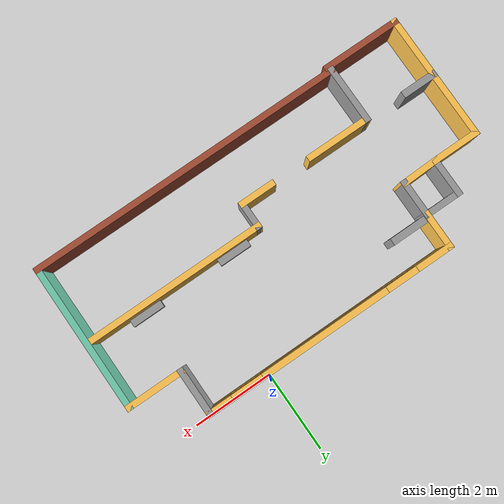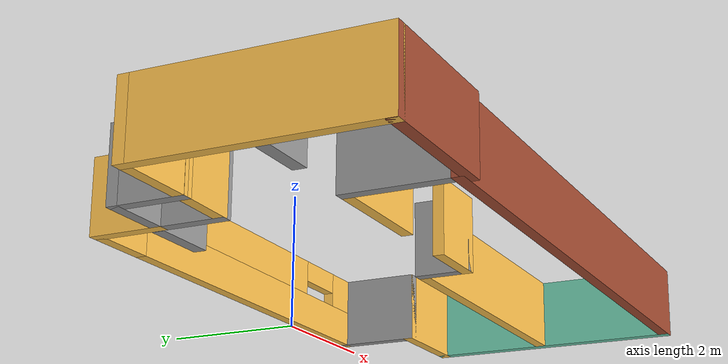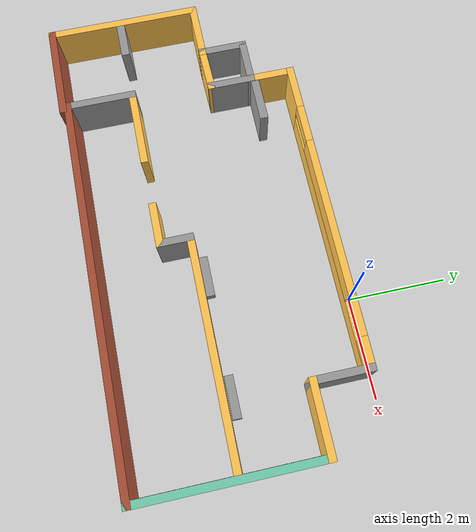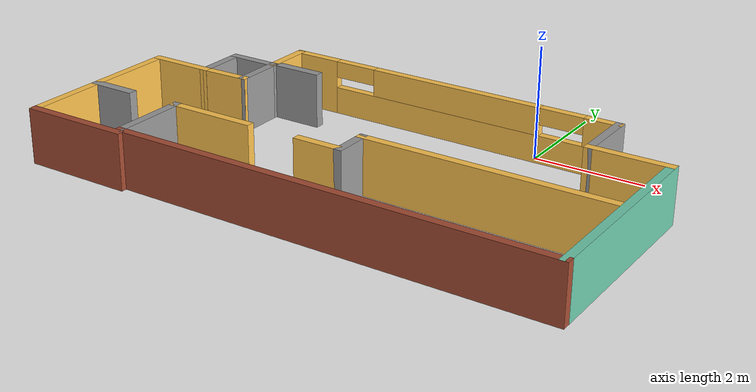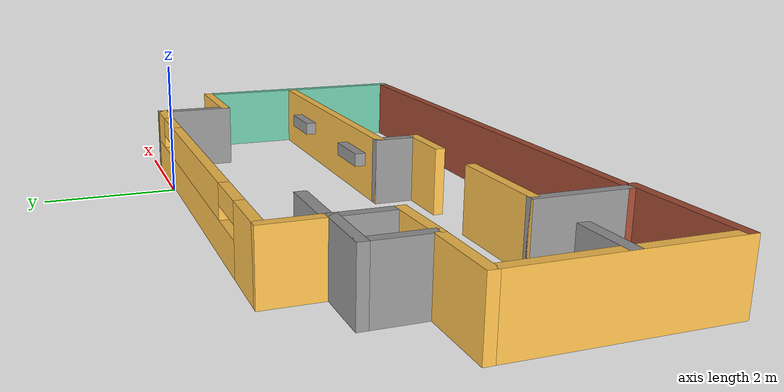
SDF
<?xml version='1.0'?>
<sdf version='1.6'>
  <model name='mybuilding'>
    <pose frame=''>-1.975 -2.502 0 0 -0 0</pose>
    <link name='Door_0'>
      <collision name='Door_0_Collision'>
        <geometry>
          <box>
            <size>0.9 0.17 1</size>
          </box>
        </geometry>
        <pose frame=''>0 0 0.5 0 -0 0</pose>
      </collision>
      <visual name='Door_0_Visual'>
        <pose frame=''>0 0 0.5 0 -0 0</pose>
        <geometry>
          <box>
            <size>0.9 0.17 1</size>
          </box>
        </geometry>
        <material>
          <script>
            <uri>file://media/materials/scripts/gazebo.material</uri>
            <name>Gazebo/Grey</name>
          </script>
        </material>
      </visual>
      <pose frame=''>-4.44751 -0.930542 0 0 -0 0</pose>
    </link>
    <link name='Door_2'>
      <collision name='Door_2_Collision'>
        <geometry>
          <box>
            <size>0.9 0.17 1</size>
          </box>
        </geometry>
        <pose frame=''>0 0 0.5 0 -0 0</pose>
      </collision>
      <visual name='Door_2_Visual'>
        <pose frame=''>0 0 0.5 0 -0 0</pose>
        <geometry>
          <box>
            <size>0.9 0.17 1</size>
          </box>
        </geometry>
        <material>
          <script>
            <uri>file://media/materials/scripts/gazebo.material</uri>
            <name>Gazebo/Grey</name>
          </script>
        </material>
      </visual>
      <pose frame=''>-2.34263 1.61383 0 0 -0 0</pose>
    </link>
    <link name='Wall_0'>
      <pose frame=''>0.3 2.4 0 0 -0 0</pose>
      <visual name='Wall_0_Visual_0'>
        <pose frame=''>-2.77622 0 0.5 0 -0 0</pose>
        <geometry>
          <box>
            <size>0.947553 0.15 1</size>
          </box>
        </geometry>
        <material>
          <script>
            <uri>file://media/materials/scripts/gazebo.material</uri>
            <name>Gazebo/Grey</name>
          </script>
          <ambient>1 0.764706 0.305882 1</ambient>
        </material>
        <meta>
          <layer>0</layer>
        </meta>
      </visual>
      <collision name='Wall_0_Collision_0'>
        <geometry>
          <box>
            <size>0.947553 0.15 1</size>
          </box>
        </geometry>
        <pose frame=''>-2.77622 0 0.5 0 -0 0</pose>
      </collision>
      <visual name='Wall_0_Visual_1'>
        <pose frame=''>0.473776 0 0.25 0 -0 0</pose>
        <geometry>
          <box>
            <size>5.55245 0.15 0.5</size>
          </box>
        </geometry>
        <material>
          <script>
            <uri>file://media/materials/scripts/gazebo.material</uri>
            <name>Gazebo/Grey</name>
          </script>
          <ambient>1 0.764706 0.305882 1</ambient>
        </material>
        <meta>
          <layer>0</layer>
        </meta>
      </visual>
      <collision name='Wall_0_Collision_1'>
        <geometry>
          <box>
            <size>5.55245 0.15 0.5</size>
          </box>
        </geometry>
        <pose frame=''>0.473776 0 0.25 0 -0 0</pose>
      </collision>
      <visual name='Wall_0_Visual_2'>
        <pose frame=''>0.144611 0 0.75 0 -0 0</pose>
        <geometry>
          <box>
            <size>3.29412 0.15 0.5</size>
          </box>
        </geometry>
        <material>
          <script>
            <uri>file://media/materials/scripts/gazebo.material</uri>
            <name>Gazebo/Grey</name>
          </script>
          <ambient>1 0.764706 0.305882 1</ambient>
        </material>
        <meta>
          <layer>0</layer>
        </meta>
      </visual>
      <collision name='Wall_0_Collision_2'>
        <geometry>
          <box>
            <size>3.29412 0.15 0.5</size>
          </box>
        </geometry>
        <pose frame=''>0.144611 0 0.75 0 -0 0</pose>
      </collision>
      <visual name='Wall_0_Visual_3'>
        <pose frame=''>2.92083 0 0.75 0 -0 0</pose>
        <geometry>
          <box>
            <size>0.65833 0.15 0.5</size>
          </box>
        </geometry>
        <material>
          <script>
            <uri>file://media/materials/scripts/gazebo.material</uri>
            <name>Gazebo/Grey</name>
          </script>
          <ambient>1 0.764706 0.305882 1</ambient>
        </material>
        <meta>
          <layer>0</layer>
        </meta>
      </visual>
      <collision name='Wall_0_Collision_3'>
        <geometry>
          <box>
            <size>0.65833 0.15 0.5</size>
          </box>
        </geometry>
        <pose frame=''>2.92083 0 0.75 0 -0 0</pose>
      </collision>
      <visual name='Wall_0_Visual_4'>
        <pose frame=''>-1.90245 0 0.85 0 -0 0</pose>
        <geometry>
          <box>
            <size>0.8 0.15 0.3</size>
          </box>
        </geometry>
        <material>
          <script>
            <uri>file://media/materials/scripts/gazebo.material</uri>
            <name>Gazebo/Grey</name>
          </script>
          <ambient>1 0.764706 0.305882 1</ambient>
        </material>
        <meta>
          <layer>0</layer>
        </meta>
      </visual>
      <collision name='Wall_0_Collision_4'>
        <geometry>
          <box>
            <size>0.8 0.15 0.3</size>
          </box>
        </geometry>
        <pose frame=''>-1.90245 0 0.85 0 -0 0</pose>
      </collision>
      <visual name='Wall_0_Visual_5'>
        <pose frame=''>2.19167 0 0.85 0 -0 0</pose>
        <geometry>
          <box>
            <size>0.8 0.15 0.3</size>
          </box>
        </geometry>
        <material>
          <script>
            <uri>file://media/materials/scripts/gazebo.material</uri>
            <name>Gazebo/Grey</name>
          </script>
          <ambient>1 0.764706 0.305882 1</ambient>
        </material>
        <meta>
          <layer>0</layer>
        </meta>
      </visual>
      <collision name='Wall_0_Collision_5'>
        <geometry>
          <box>
            <size>0.8 0.15 0.3</size>
          </box>
        </geometry>
        <pose frame=''>2.19167 0 0.85 0 -0 0</pose>
      </collision>
    </link>
    <link name='Wall_1'>
      <collision name='Wall_1_Collision'>
        <geometry>
          <box>
            <size>1.25 0.15 1</size>
          </box>
        </geometry>
        <pose frame=''>0 0 0.5 0 -0 0</pose>
      </collision>
      <visual name='Wall_1_Visual'>
        <pose frame=''>0 0 0.5 0 -0 0</pose>
        <geometry>
          <box>
            <size>1.25 0.15 1</size>
          </box>
        </geometry>
        <material>
          <script>
            <uri>file://media/materials/scripts/gazebo.material</uri>
            <name>Gazebo/Grey</name>
          </script>
          <ambient>1 1 1 1</ambient>
        </material>
        <meta>
          <layer>0</layer>
        </meta>
      </visual>
      <pose frame=''>3.475 1.85 0 0 0 -1.5708</pose>
    </link>
    <link name='Wall_11'>
      <collision name='Wall_11_Collision'>
        <geometry>
          <box>
            <size>1 0.15 1</size>
          </box>
        </geometry>
        <pose frame=''>0 0 0.5 0 -0 0</pose>
      </collision>
      <visual name='Wall_11_Visual'>
        <pose frame=''>0 0 0.5 0 -0 0</pose>
        <geometry>
          <box>
            <size>1 0.15 1</size>
          </box>
        </geometry>
        <material>
          <script>
            <uri>file://media/materials/scripts/gazebo.material</uri>
            <name>Gazebo/Grey</name>
          </script>
          <ambient>1 0.764706 0.305882 1</ambient>
        </material>
        <meta>
          <layer>0</layer>
        </meta>
      </visual>
      <pose frame=''>-2.875 1.975 0 0 0 -1.5708</pose>
    </link>
    <link name='Wall_12'>
      <collision name='Wall_12_Collision'>
        <geometry>
          <box>
            <size>1 0.15 1</size>
          </box>
        </geometry>
        <pose frame=''>0 0 0.5 0 -0 0</pose>
      </collision>
      <visual name='Wall_12_Visual'>
        <pose frame=''>0 0 0.5 0 -0 0</pose>
        <geometry>
          <box>
            <size>1 0.15 1</size>
          </box>
        </geometry>
        <material>
          <script>
            <uri>file://media/materials/scripts/gazebo.material</uri>
            <name>Gazebo/Grey</name>
          </script>
          <ambient>1 1 1 1</ambient>
        </material>
        <meta>
          <layer>0</layer>
        </meta>
      </visual>
      <pose frame=''>-3.3 1.55 0 0 -0 3.14159</pose>
    </link>
    <link name='Wall_13'>
      <collision name='Wall_13_Collision'>
        <geometry>
          <box>
            <size>1.023 0.15 1</size>
          </box>
        </geometry>
        <pose frame=''>0 0 0.5 0 -0 0</pose>
      </collision>
      <visual name='Wall_13_Visual'>
        <pose frame=''>0 0 0.5 0 -0 0</pose>
        <geometry>
          <box>
            <size>1.023 0.15 1</size>
          </box>
        </geometry>
        <material>
          <script>
            <uri>file://media/materials/scripts/gazebo.material</uri>
            <name>Gazebo/Grey</name>
          </script>
          <ambient>1 1 1 1</ambient>
        </material>
        <meta>
          <layer>0</layer>
        </meta>
      </visual>
      <pose frame=''>-3.725 1.1135 0 0 0 -1.5708</pose>
    </link>
    <link name='Wall_14'>
      <collision name='Wall_14_Collision'>
        <geometry>
          <box>
            <size>1.25 0.15 1</size>
          </box>
        </geometry>
        <pose frame=''>0 0 0.5 0 -0 0</pose>
      </collision>
      <visual name='Wall_14_Visual'>
        <pose frame=''>0 0 0.5 0 -0 0</pose>
        <geometry>
          <box>
            <size>1.25 0.15 1</size>
          </box>
        </geometry>
        <material>
          <script>
            <uri>file://media/materials/scripts/gazebo.material</uri>
            <name>Gazebo/Grey</name>
          </script>
          <ambient>1 0.764706 0.305882 1</ambient>
        </material>
        <meta>
          <layer>0</layer>
        </meta>
      </visual>
      <pose frame=''>-4.275 0.677 0 0 -0 3.14159</pose>
    </link>
    <link name='Wall_15'>
      <collision name='Wall_15_Collision'>
        <geometry>
          <box>
            <size>3.227 0.15 1</size>
          </box>
        </geometry>
        <pose frame=''>0 0 0.5 0 -0 0</pose>
      </collision>
      <visual name='Wall_15_Visual'>
        <pose frame=''>0 0 0.5 0 -0 0</pose>
        <geometry>
          <box>
            <size>3.227 0.15 1</size>
          </box>
        </geometry>
        <material>
          <script>
            <uri>file://media/materials/scripts/gazebo.material</uri>
            <name>Gazebo/Grey</name>
          </script>
          <ambient>1 0.764706 0.305882 1</ambient>
        </material>
        <meta>
          <layer>0</layer>
        </meta>
      </visual>
      <pose frame=''>-4.825 -0.8615 0 0 0 -1.5708</pose>
    </link>
    <link name='Wall_16'>
      <collision name='Wall_16_Collision'>
        <geometry>
          <box>
            <size>2 0.15 1</size>
          </box>
        </geometry>
        <pose frame=''>0 0 0.5 0 -0 0</pose>
      </collision>
      <visual name='Wall_16_Visual'>
        <pose frame=''>0 0 0.5 0 -0 0</pose>
        <geometry>
          <box>
            <size>2 0.15 1</size>
          </box>
        </geometry>
        <material>
          <script>
            <uri>file://media/materials/scripts/gazebo.material</uri>
            <name>Gazebo/Bricks</name>
          </script>
          <ambient>1 0.764706 0.305882 1</ambient>
        </material>
        <meta>
          <layer>0</layer>
        </meta>
      </visual>
      <pose frame=''>-3.9 -2.4 0 0 -0 0</pose>
    </link>
    <link name='Wall_18'>
      <pose frame=''>-1.35 -0.95 0 0 -0 0</pose>
      <visual name='Wall_18_Visual_0'>
        <pose frame=''>-0.913961 0 0.5 0 -0 0</pose>
        <geometry>
          <box>
            <size>1.67208 0.15 1</size>
          </box>
        </geometry>
        <material>
          <script>
            <uri>file://media/materials/scripts/gazebo.material</uri>
            <name>Gazebo/Grey</name>
          </script>
          <ambient>1 0.764706 0.305882 1</ambient>
        </material>
        <meta>
          <layer>0</layer>
        </meta>
      </visual>
      <collision name='Wall_18_Collision_0'>
        <geometry>
          <box>
            <size>1.67208 0.15 1</size>
          </box>
        </geometry>
        <pose frame=''>-0.913961 0 0.5 0 -0 0</pose>
      </collision>
      <visual name='Wall_18_Visual_1'>
        <pose frame=''>1.28604 0 0.5 0 -0 0</pose>
        <geometry>
          <box>
            <size>0.927921 0.15 1</size>
          </box>
        </geometry>
        <material>
          <script>
            <uri>file://media/materials/scripts/gazebo.material</uri>
            <name>Gazebo/Grey</name>
          </script>
          <ambient>1 0.764706 0.305882 1</ambient>
        </material>
        <meta>
          <layer>0</layer>
        </meta>
      </visual>
      <collision name='Wall_18_Collision_1'>
        <geometry>
          <box>
            <size>0.927921 0.15 1</size>
          </box>
        </geometry>
        <pose frame=''>1.28604 0 0.5 0 -0 0</pose>
      </collision>
    </link>
    <link name='Wall_19'>
      <collision name='Wall_19_Collision'>
        <geometry>
          <box>
            <size>0.75 0.15 1</size>
          </box>
        </geometry>
        <pose frame=''>0 0 0.5 0 -0 0</pose>
      </collision>
      <visual name='Wall_19_Visual'>
        <pose frame=''>0 0 0.5 0 -0 0</pose>
        <geometry>
          <box>
            <size>0.75 0.15 1</size>
          </box>
        </geometry>
        <material>
          <script>
            <uri>file://media/materials/scripts/gazebo.material</uri>
            <name>Gazebo/Grey</name>
          </script>
          <ambient>1 1 1 1</ambient>
        </material>
        <meta>
          <layer>0</layer>
        </meta>
      </visual>
      <pose frame=''>0.325 -0.65 0 0 -0 1.5708</pose>
    </link>
    <link name='Wall_2'>
      <collision name='Wall_2_Collision'>
        <geometry>
          <box>
            <size>1.5 0.15 1</size>
          </box>
        </geometry>
        <pose frame=''>0 0 0.5 0 -0 0</pose>
      </collision>
      <visual name='Wall_2_Visual'>
        <pose frame=''>0 0 0.5 0 -0 0</pose>
        <geometry>
          <box>
            <size>1.5 0.15 1</size>
          </box>
        </geometry>
        <material>
          <script>
            <uri>file://media/materials/scripts/gazebo.material</uri>
            <name>Gazebo/Grey</name>
          </script>
          <ambient>1 0.764706 0.305882 1</ambient>
        </material>
        <meta>
          <layer>0</layer>
        </meta>
      </visual>
      <pose frame=''>4.15 1.3 0 0 -0 0</pose>
    </link>
    <link name='Wall_20'>
      <collision name='Wall_20_Collision'>
        <geometry>
          <box>
            <size>4.5 0.15 1</size>
          </box>
        </geometry>
        <pose frame=''>0 0 0.5 0 -0 0</pose>
      </collision>
      <visual name='Wall_20_Visual'>
        <pose frame=''>0 0 0.5 0 -0 0</pose>
        <geometry>
          <box>
            <size>4.5 0.15 1</size>
          </box>
        </geometry>
        <material>
          <script>
            <uri>file://media/materials/scripts/gazebo.material</uri>
            <name>Gazebo/Grey</name>
          </script>
          <ambient>1 0.764706 0.305882 1</ambient>
        </material>
        <meta>
          <layer>0</layer>
        </meta>
      </visual>
      <pose frame=''>2.5 -0.35 0 0 -0 0</pose>
    </link>
    <link name='Wall_22'>
      <collision name='Wall_22_Collision'>
        <geometry>
          <box>
            <size>1 0.15 1</size>
          </box>
        </geometry>
        <pose frame=''>0 0 0.5 0 -0 0</pose>
      </collision>
      <visual name='Wall_22_Visual'>
        <pose frame=''>0 0 0.5 0 -0 0</pose>
        <geometry>
          <box>
            <size>1 0.15 1</size>
          </box>
        </geometry>
        <material>
          <script>
            <uri>file://media/materials/scripts/gazebo.material</uri>
            <name>Gazebo/Grey</name>
          </script>
          <ambient>1 0.764706 0.305882 1</ambient>
        </material>
        <meta>
          <layer>0</layer>
        </meta>
      </visual>
      <pose frame=''>-3.3 0.6885 0 0 -0 0.027052</pose>
    </link>
    <link name='Wall_23'>
      <collision name='Wall_23_Collision'>
        <geometry>
          <box>
            <size>1 0.15 1</size>
          </box>
        </geometry>
        <pose frame=''>0 0 0.5 0 -0 0</pose>
      </collision>
      <visual name='Wall_23_Visual'>
        <pose frame=''>0 0 0.5 0 -0 0</pose>
        <geometry>
          <box>
            <size>1 0.15 1</size>
          </box>
        </geometry>
        <material>
          <script>
            <uri>file://media/materials/scripts/gazebo.material</uri>
            <name>Gazebo/Grey</name>
          </script>
          <ambient>1 1 1 1</ambient>
        </material>
        <meta>
          <layer>0</layer>
        </meta>
      </visual>
      <pose frame=''>-2.875 1.125 0 0 -0 1.5708</pose>
    </link>
    <link name='Wall_3'>
      <collision name='Wall_3_Collision'>
        <geometry>
          <box>
            <size>3.75 0.15 1</size>
          </box>
        </geometry>
        <pose frame=''>0 0 0.5 0 -0 0</pose>
      </collision>
      <visual name='Wall_3_Visual'>
        <pose frame=''>0 0 0.5 0 -0 0</pose>
        <geometry>
          <box>
            <size>3.75 0.15 1</size>
          </box>
        </geometry>
        <material>
          <script>
            <uri>file://media/materials/scripts/gazebo.material</uri>
            <name>Gazebo/Grey</name>
          </script>
          <ambient>0.435294 0.796078 0.67451 1</ambient>
        </material>
        <meta>
          <layer>0</layer>
        </meta>
      </visual>
      <pose frame=''>4.825 -0.5 0 0 0 -1.5708</pose>
    </link>
    <link name='Wall_4'>
      <collision name='Wall_4_Collision'>
        <geometry>
          <box>
            <size>8 0.15 1</size>
          </box>
        </geometry>
        <pose frame=''>0 0 0.5 0 -0 0</pose>
      </collision>
      <visual name='Wall_4_Visual'>
        <pose frame=''>0 0 0.5 0 -0 0</pose>
        <geometry>
          <box>
            <size>8 0.15 1</size>
          </box>
        </geometry>
        <material>
          <script>
            <uri>file://media/materials/scripts/gazebo.material</uri>
            <name>Gazebo/Bricks</name>
          </script>
          <ambient>1 0.764706 0.305882 1</ambient>
        </material>
        <meta>
          <layer>0</layer>
        </meta>
      </visual>
      <pose frame=''>0.9 -2.3 0 0 -0 3.14159</pose>
    </link>
    <link name='Wall_5'>
      <collision name='Wall_5_Collision'>
        <geometry>
          <box>
            <size>1.5 0.15 1</size>
          </box>
        </geometry>
        <pose frame=''>0 0 0.5 0 -0 0</pose>
      </collision>
      <visual name='Wall_5_Visual'>
        <pose frame=''>0 0 0.5 0 -0 0</pose>
        <geometry>
          <box>
            <size>1.5 0.15 1</size>
          </box>
        </geometry>
        <material>
          <script>
            <uri>file://media/materials/scripts/gazebo.material</uri>
            <name>Gazebo/Grey</name>
          </script>
          <ambient>1 1 1 1</ambient>
        </material>
        <meta>
          <layer>0</layer>
        </meta>
      </visual>
      <pose frame=''>-3.025 -1.625 0 0 -0 1.5708</pose>
    </link>
    <link name='Window_0'>
      <collision name='Window_0_Collision'>
        <geometry>
          <box>
            <size>0.8 0.17 0.2</size>
          </box>
        </geometry>
        <pose frame=''>0 0 0.1 0 -0 0</pose>
      </collision>
      <visual name='Window_0_Visual'>
        <pose frame=''>0 0 0.1 0 -0 0</pose>
        <geometry>
          <box>
            <size>0.8 0.17 0.2</size>
          </box>
        </geometry>
        <material>
          <script>
            <uri>file://media/materials/scripts/gazebo.material</uri>
            <name>Gazebo/Grey</name>
          </script>
        </material>
      </visual>
      <pose frame=''>1.0807 -0.190363 0.5 0 -0 0</pose>
    </link>
    <link name='Window_2'>
      <collision name='Window_2_Collision'>
        <geometry>
          <box>
            <size>0.8 0.17 0.2</size>
          </box>
        </geometry>
        <pose frame=''>0 0 0.1 0 -0 0</pose>
      </collision>
      <visual name='Window_2_Visual'>
        <pose frame=''>0 0 0.1 0 -0 0</pose>
        <geometry>
          <box>
            <size>0.8 0.17 0.2</size>
          </box>
        </geometry>
        <material>
          <script>
            <uri>file://media/materials/scripts/gazebo.material</uri>
            <name>Gazebo/Grey</name>
          </script>
        </material>
      </visual>
      <pose frame=''>3.41689 -0.167232 0.5 0 -0 0</pose>
    </link>
    <static>1</static>
  </model>
</sdf>
